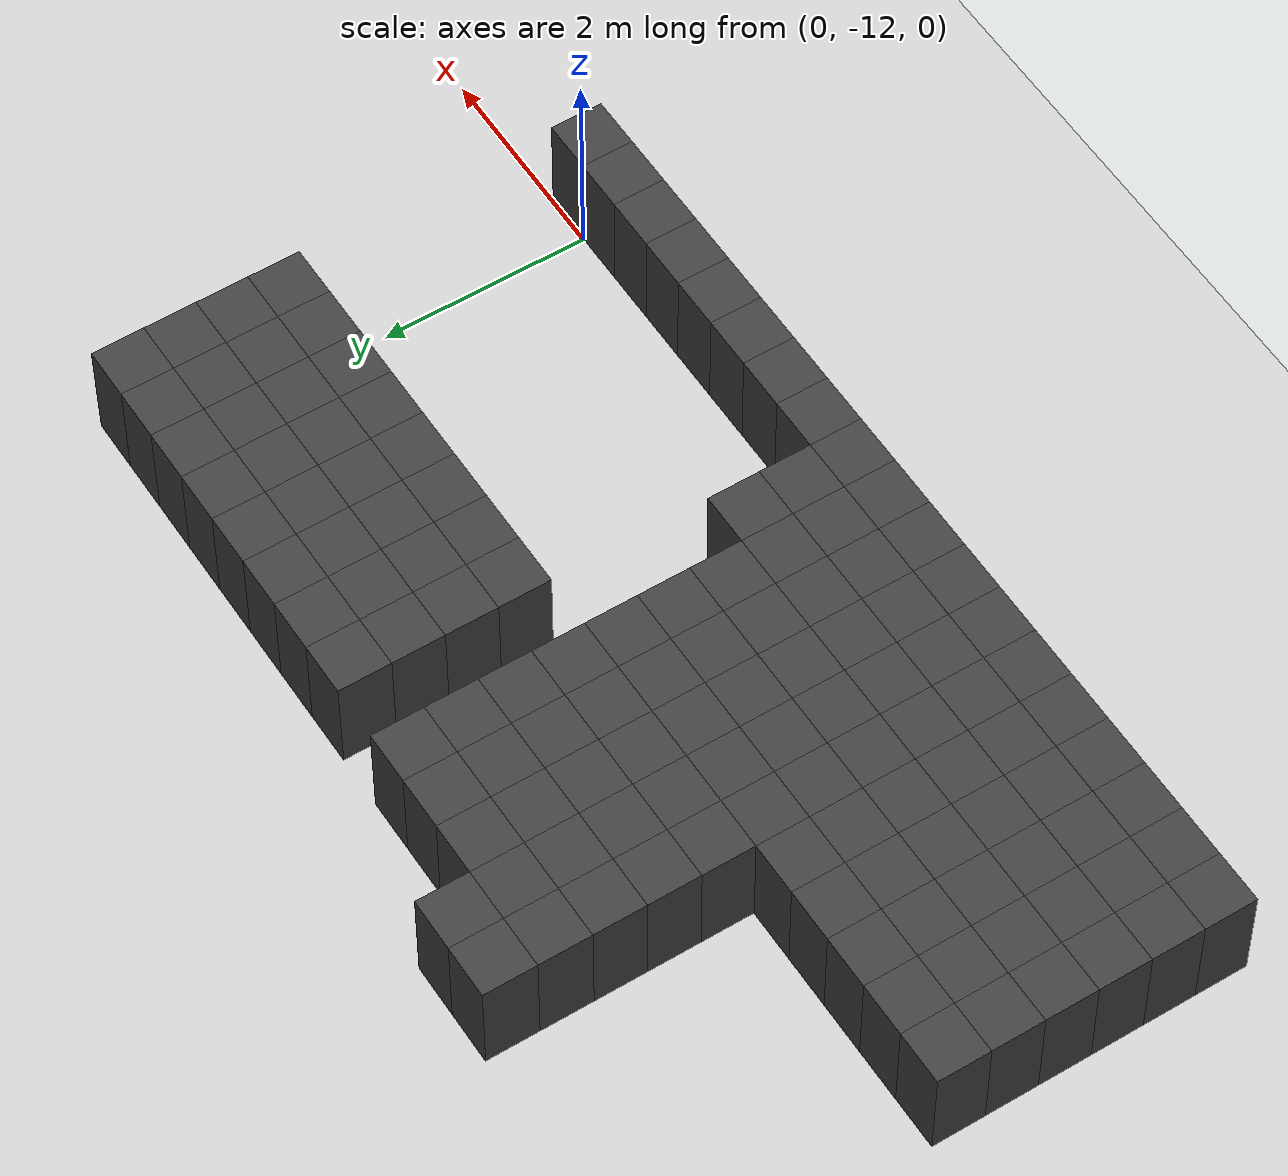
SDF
<sdf version="1.7">
 <world name="map_14495">
  <model name="ground_plane">
   <static>true</static>
   <link name="link">
    <collision name="collision">
     <geometry><plane><normal>0 0 1</normal><size>200 200</size></plane></geometry>
    </collision>
    <visual name="visual">
     <geometry><plane><normal>0 0 1</normal><size>200 200</size></plane></geometry>
     <material><ambient>0.8 0.8 0.8 1</ambient><diffuse>0.8 0.8 0.8 1</diffuse></material>
    </visual>
   </link>
  </model>
  <model name="maze_environment">
   <static>true</static>
   <link name="wall_1392">
    <pose>-6.250 -7.250 0.500 0 0 0</pose>
    <collision name="col"><geometry><box><size>0.5 0.5 1.0</size></box></geometry></collision>
    <visual name="vis">
     <geometry><box><size>0.5 0.5 1.0</size></box></geometry>
     <material><ambient>0.15 0.15 0.15 1</ambient><diffuse>0.25 0.25 0.25 1</diffuse></material>
    </visual>
   </link>
   <link name="wall_1393">
    <pose>-5.750 -7.250 0.500 0 0 0</pose>
    <collision name="col"><geometry><box><size>0.5 0.5 1.0</size></box></geometry></collision>
    <visual name="vis">
     <geometry><box><size>0.5 0.5 1.0</size></box></geometry>
     <material><ambient>0.15 0.15 0.15 1</ambient><diffuse>0.25 0.25 0.25 1</diffuse></material>
    </visual>
   </link>
   <link name="wall_1425">
    <pose>-6.250 -7.750 0.500 0 0 0</pose>
    <collision name="col"><geometry><box><size>0.5 0.5 1.0</size></box></geometry></collision>
    <visual name="vis">
     <geometry><box><size>0.5 0.5 1.0</size></box></geometry>
     <material><ambient>0.15 0.15 0.15 1</ambient><diffuse>0.25 0.25 0.25 1</diffuse></material>
    </visual>
   </link>
   <link name="wall_1426">
    <pose>-5.750 -7.750 0.500 0 0 0</pose>
    <collision name="col"><geometry><box><size>0.5 0.5 1.0</size></box></geometry></collision>
    <visual name="vis">
     <geometry><box><size>0.5 0.5 1.0</size></box></geometry>
     <material><ambient>0.15 0.15 0.15 1</ambient><diffuse>0.25 0.25 0.25 1</diffuse></material>
    </visual>
   </link>
   <link name="wall_1427">
    <pose>-5.250 -7.750 0.500 0 0 0</pose>
    <collision name="col"><geometry><box><size>0.5 0.5 1.0</size></box></geometry></collision>
    <visual name="vis">
     <geometry><box><size>0.5 0.5 1.0</size></box></geometry>
     <material><ambient>0.15 0.15 0.15 1</ambient><diffuse>0.25 0.25 0.25 1</diffuse></material>
    </visual>
   </link>
   <link name="wall_1428">
    <pose>-4.750 -7.750 0.500 0 0 0</pose>
    <collision name="col"><geometry><box><size>0.5 0.5 1.0</size></box></geometry></collision>
    <visual name="vis">
     <geometry><box><size>0.5 0.5 1.0</size></box></geometry>
     <material><ambient>0.15 0.15 0.15 1</ambient><diffuse>0.25 0.25 0.25 1</diffuse></material>
    </visual>
   </link>
   <link name="wall_1429">
    <pose>-4.250 -7.750 0.500 0 0 0</pose>
    <collision name="col"><geometry><box><size>0.5 0.5 1.0</size></box></geometry></collision>
    <visual name="vis">
     <geometry><box><size>0.5 0.5 1.0</size></box></geometry>
     <material><ambient>0.15 0.15 0.15 1</ambient><diffuse>0.25 0.25 0.25 1</diffuse></material>
    </visual>
   </link>
   <link name="wall_1430">
    <pose>-3.250 -7.750 0.500 0 0 0</pose>
    <collision name="col"><geometry><box><size>0.5 0.5 1.0</size></box></geometry></collision>
    <visual name="vis">
     <geometry><box><size>0.5 0.5 1.0</size></box></geometry>
     <material><ambient>0.15 0.15 0.15 1</ambient><diffuse>0.25 0.25 0.25 1</diffuse></material>
    </visual>
   </link>
   <link name="wall_1431">
    <pose>-2.750 -7.750 0.500 0 0 0</pose>
    <collision name="col"><geometry><box><size>0.5 0.5 1.0</size></box></geometry></collision>
    <visual name="vis">
     <geometry><box><size>0.5 0.5 1.0</size></box></geometry>
     <material><ambient>0.15 0.15 0.15 1</ambient><diffuse>0.25 0.25 0.25 1</diffuse></material>
    </visual>
   </link>
   <link name="wall_1432">
    <pose>-2.250 -7.750 0.500 0 0 0</pose>
    <collision name="col"><geometry><box><size>0.5 0.5 1.0</size></box></geometry></collision>
    <visual name="vis">
     <geometry><box><size>0.5 0.5 1.0</size></box></geometry>
     <material><ambient>0.15 0.15 0.15 1</ambient><diffuse>0.25 0.25 0.25 1</diffuse></material>
    </visual>
   </link>
   <link name="wall_1433">
    <pose>-1.750 -7.750 0.500 0 0 0</pose>
    <collision name="col"><geometry><box><size>0.5 0.5 1.0</size></box></geometry></collision>
    <visual name="vis">
     <geometry><box><size>0.5 0.5 1.0</size></box></geometry>
     <material><ambient>0.15 0.15 0.15 1</ambient><diffuse>0.25 0.25 0.25 1</diffuse></material>
    </visual>
   </link>
   <link name="wall_1434">
    <pose>-1.250 -7.750 0.500 0 0 0</pose>
    <collision name="col"><geometry><box><size>0.5 0.5 1.0</size></box></geometry></collision>
    <visual name="vis">
     <geometry><box><size>0.5 0.5 1.0</size></box></geometry>
     <material><ambient>0.15 0.15 0.15 1</ambient><diffuse>0.25 0.25 0.25 1</diffuse></material>
    </visual>
   </link>
   <link name="wall_1435">
    <pose>-0.750 -7.750 0.500 0 0 0</pose>
    <collision name="col"><geometry><box><size>0.5 0.5 1.0</size></box></geometry></collision>
    <visual name="vis">
     <geometry><box><size>0.5 0.5 1.0</size></box></geometry>
     <material><ambient>0.15 0.15 0.15 1</ambient><diffuse>0.25 0.25 0.25 1</diffuse></material>
    </visual>
   </link>
   <link name="wall_1436">
    <pose>-0.250 -7.750 0.500 0 0 0</pose>
    <collision name="col"><geometry><box><size>0.5 0.5 1.0</size></box></geometry></collision>
    <visual name="vis">
     <geometry><box><size>0.5 0.5 1.0</size></box></geometry>
     <material><ambient>0.15 0.15 0.15 1</ambient><diffuse>0.25 0.25 0.25 1</diffuse></material>
    </visual>
   </link>
   <link name="wall_1437">
    <pose>0.250 -7.750 0.500 0 0 0</pose>
    <collision name="col"><geometry><box><size>0.5 0.5 1.0</size></box></geometry></collision>
    <visual name="vis">
     <geometry><box><size>0.5 0.5 1.0</size></box></geometry>
     <material><ambient>0.15 0.15 0.15 1</ambient><diffuse>0.25 0.25 0.25 1</diffuse></material>
    </visual>
   </link>
   <link name="wall_1458">
    <pose>-6.250 -8.250 0.500 0 0 0</pose>
    <collision name="col"><geometry><box><size>0.5 0.5 1.0</size></box></geometry></collision>
    <visual name="vis">
     <geometry><box><size>0.5 0.5 1.0</size></box></geometry>
     <material><ambient>0.15 0.15 0.15 1</ambient><diffuse>0.25 0.25 0.25 1</diffuse></material>
    </visual>
   </link>
   <link name="wall_1459">
    <pose>-5.750 -8.250 0.500 0 0 0</pose>
    <collision name="col"><geometry><box><size>0.5 0.5 1.0</size></box></geometry></collision>
    <visual name="vis">
     <geometry><box><size>0.5 0.5 1.0</size></box></geometry>
     <material><ambient>0.15 0.15 0.15 1</ambient><diffuse>0.25 0.25 0.25 1</diffuse></material>
    </visual>
   </link>
   <link name="wall_1460">
    <pose>-5.250 -8.250 0.500 0 0 0</pose>
    <collision name="col"><geometry><box><size>0.5 0.5 1.0</size></box></geometry></collision>
    <visual name="vis">
     <geometry><box><size>0.5 0.5 1.0</size></box></geometry>
     <material><ambient>0.15 0.15 0.15 1</ambient><diffuse>0.25 0.25 0.25 1</diffuse></material>
    </visual>
   </link>
   <link name="wall_1461">
    <pose>-4.750 -8.250 0.500 0 0 0</pose>
    <collision name="col"><geometry><box><size>0.5 0.5 1.0</size></box></geometry></collision>
    <visual name="vis">
     <geometry><box><size>0.5 0.5 1.0</size></box></geometry>
     <material><ambient>0.15 0.15 0.15 1</ambient><diffuse>0.25 0.25 0.25 1</diffuse></material>
    </visual>
   </link>
   <link name="wall_1462">
    <pose>-4.250 -8.250 0.500 0 0 0</pose>
    <collision name="col"><geometry><box><size>0.5 0.5 1.0</size></box></geometry></collision>
    <visual name="vis">
     <geometry><box><size>0.5 0.5 1.0</size></box></geometry>
     <material><ambient>0.15 0.15 0.15 1</ambient><diffuse>0.25 0.25 0.25 1</diffuse></material>
    </visual>
   </link>
   <link name="wall_1463">
    <pose>-3.250 -8.250 0.500 0 0 0</pose>
    <collision name="col"><geometry><box><size>0.5 0.5 1.0</size></box></geometry></collision>
    <visual name="vis">
     <geometry><box><size>0.5 0.5 1.0</size></box></geometry>
     <material><ambient>0.15 0.15 0.15 1</ambient><diffuse>0.25 0.25 0.25 1</diffuse></material>
    </visual>
   </link>
   <link name="wall_1464">
    <pose>-2.750 -8.250 0.500 0 0 0</pose>
    <collision name="col"><geometry><box><size>0.5 0.5 1.0</size></box></geometry></collision>
    <visual name="vis">
     <geometry><box><size>0.5 0.5 1.0</size></box></geometry>
     <material><ambient>0.15 0.15 0.15 1</ambient><diffuse>0.25 0.25 0.25 1</diffuse></material>
    </visual>
   </link>
   <link name="wall_1465">
    <pose>-2.250 -8.250 0.500 0 0 0</pose>
    <collision name="col"><geometry><box><size>0.5 0.5 1.0</size></box></geometry></collision>
    <visual name="vis">
     <geometry><box><size>0.5 0.5 1.0</size></box></geometry>
     <material><ambient>0.15 0.15 0.15 1</ambient><diffuse>0.25 0.25 0.25 1</diffuse></material>
    </visual>
   </link>
   <link name="wall_1466">
    <pose>-1.750 -8.250 0.500 0 0 0</pose>
    <collision name="col"><geometry><box><size>0.5 0.5 1.0</size></box></geometry></collision>
    <visual name="vis">
     <geometry><box><size>0.5 0.5 1.0</size></box></geometry>
     <material><ambient>0.15 0.15 0.15 1</ambient><diffuse>0.25 0.25 0.25 1</diffuse></material>
    </visual>
   </link>
   <link name="wall_1467">
    <pose>-1.250 -8.250 0.500 0 0 0</pose>
    <collision name="col"><geometry><box><size>0.5 0.5 1.0</size></box></geometry></collision>
    <visual name="vis">
     <geometry><box><size>0.5 0.5 1.0</size></box></geometry>
     <material><ambient>0.15 0.15 0.15 1</ambient><diffuse>0.25 0.25 0.25 1</diffuse></material>
    </visual>
   </link>
   <link name="wall_1468">
    <pose>-0.750 -8.250 0.500 0 0 0</pose>
    <collision name="col"><geometry><box><size>0.5 0.5 1.0</size></box></geometry></collision>
    <visual name="vis">
     <geometry><box><size>0.5 0.5 1.0</size></box></geometry>
     <material><ambient>0.15 0.15 0.15 1</ambient><diffuse>0.25 0.25 0.25 1</diffuse></material>
    </visual>
   </link>
   <link name="wall_1469">
    <pose>-0.250 -8.250 0.500 0 0 0</pose>
    <collision name="col"><geometry><box><size>0.5 0.5 1.0</size></box></geometry></collision>
    <visual name="vis">
     <geometry><box><size>0.5 0.5 1.0</size></box></geometry>
     <material><ambient>0.15 0.15 0.15 1</ambient><diffuse>0.25 0.25 0.25 1</diffuse></material>
    </visual>
   </link>
   <link name="wall_1470">
    <pose>0.250 -8.250 0.500 0 0 0</pose>
    <collision name="col"><geometry><box><size>0.5 0.5 1.0</size></box></geometry></collision>
    <visual name="vis">
     <geometry><box><size>0.5 0.5 1.0</size></box></geometry>
     <material><ambient>0.15 0.15 0.15 1</ambient><diffuse>0.25 0.25 0.25 1</diffuse></material>
    </visual>
   </link>
   <link name="wall_1489">
    <pose>-6.250 -8.750 0.500 0 0 0</pose>
    <collision name="col"><geometry><box><size>0.5 0.5 1.0</size></box></geometry></collision>
    <visual name="vis">
     <geometry><box><size>0.5 0.5 1.0</size></box></geometry>
     <material><ambient>0.15 0.15 0.15 1</ambient><diffuse>0.25 0.25 0.25 1</diffuse></material>
    </visual>
   </link>
   <link name="wall_1490">
    <pose>-5.750 -8.750 0.500 0 0 0</pose>
    <collision name="col"><geometry><box><size>0.5 0.5 1.0</size></box></geometry></collision>
    <visual name="vis">
     <geometry><box><size>0.5 0.5 1.0</size></box></geometry>
     <material><ambient>0.15 0.15 0.15 1</ambient><diffuse>0.25 0.25 0.25 1</diffuse></material>
    </visual>
   </link>
   <link name="wall_1491">
    <pose>-5.250 -8.750 0.500 0 0 0</pose>
    <collision name="col"><geometry><box><size>0.5 0.5 1.0</size></box></geometry></collision>
    <visual name="vis">
     <geometry><box><size>0.5 0.5 1.0</size></box></geometry>
     <material><ambient>0.15 0.15 0.15 1</ambient><diffuse>0.25 0.25 0.25 1</diffuse></material>
    </visual>
   </link>
   <link name="wall_1492">
    <pose>-4.750 -8.750 0.500 0 0 0</pose>
    <collision name="col"><geometry><box><size>0.5 0.5 1.0</size></box></geometry></collision>
    <visual name="vis">
     <geometry><box><size>0.5 0.5 1.0</size></box></geometry>
     <material><ambient>0.15 0.15 0.15 1</ambient><diffuse>0.25 0.25 0.25 1</diffuse></material>
    </visual>
   </link>
   <link name="wall_1493">
    <pose>-4.250 -8.750 0.500 0 0 0</pose>
    <collision name="col"><geometry><box><size>0.5 0.5 1.0</size></box></geometry></collision>
    <visual name="vis">
     <geometry><box><size>0.5 0.5 1.0</size></box></geometry>
     <material><ambient>0.15 0.15 0.15 1</ambient><diffuse>0.25 0.25 0.25 1</diffuse></material>
    </visual>
   </link>
   <link name="wall_1494">
    <pose>-3.250 -8.750 0.500 0 0 0</pose>
    <collision name="col"><geometry><box><size>0.5 0.5 1.0</size></box></geometry></collision>
    <visual name="vis">
     <geometry><box><size>0.5 0.5 1.0</size></box></geometry>
     <material><ambient>0.15 0.15 0.15 1</ambient><diffuse>0.25 0.25 0.25 1</diffuse></material>
    </visual>
   </link>
   <link name="wall_1495">
    <pose>-2.750 -8.750 0.500 0 0 0</pose>
    <collision name="col"><geometry><box><size>0.5 0.5 1.0</size></box></geometry></collision>
    <visual name="vis">
     <geometry><box><size>0.5 0.5 1.0</size></box></geometry>
     <material><ambient>0.15 0.15 0.15 1</ambient><diffuse>0.25 0.25 0.25 1</diffuse></material>
    </visual>
   </link>
   <link name="wall_1496">
    <pose>-2.250 -8.750 0.500 0 0 0</pose>
    <collision name="col"><geometry><box><size>0.5 0.5 1.0</size></box></geometry></collision>
    <visual name="vis">
     <geometry><box><size>0.5 0.5 1.0</size></box></geometry>
     <material><ambient>0.15 0.15 0.15 1</ambient><diffuse>0.25 0.25 0.25 1</diffuse></material>
    </visual>
   </link>
   <link name="wall_1497">
    <pose>-1.750 -8.750 0.500 0 0 0</pose>
    <collision name="col"><geometry><box><size>0.5 0.5 1.0</size></box></geometry></collision>
    <visual name="vis">
     <geometry><box><size>0.5 0.5 1.0</size></box></geometry>
     <material><ambient>0.15 0.15 0.15 1</ambient><diffuse>0.25 0.25 0.25 1</diffuse></material>
    </visual>
   </link>
   <link name="wall_1498">
    <pose>-1.250 -8.750 0.500 0 0 0</pose>
    <collision name="col"><geometry><box><size>0.5 0.5 1.0</size></box></geometry></collision>
    <visual name="vis">
     <geometry><box><size>0.5 0.5 1.0</size></box></geometry>
     <material><ambient>0.15 0.15 0.15 1</ambient><diffuse>0.25 0.25 0.25 1</diffuse></material>
    </visual>
   </link>
   <link name="wall_1499">
    <pose>-0.750 -8.750 0.500 0 0 0</pose>
    <collision name="col"><geometry><box><size>0.5 0.5 1.0</size></box></geometry></collision>
    <visual name="vis">
     <geometry><box><size>0.5 0.5 1.0</size></box></geometry>
     <material><ambient>0.15 0.15 0.15 1</ambient><diffuse>0.25 0.25 0.25 1</diffuse></material>
    </visual>
   </link>
   <link name="wall_1500">
    <pose>-0.250 -8.750 0.500 0 0 0</pose>
    <collision name="col"><geometry><box><size>0.5 0.5 1.0</size></box></geometry></collision>
    <visual name="vis">
     <geometry><box><size>0.5 0.5 1.0</size></box></geometry>
     <material><ambient>0.15 0.15 0.15 1</ambient><diffuse>0.25 0.25 0.25 1</diffuse></material>
    </visual>
   </link>
   <link name="wall_1501">
    <pose>0.250 -8.750 0.500 0 0 0</pose>
    <collision name="col"><geometry><box><size>0.5 0.5 1.0</size></box></geometry></collision>
    <visual name="vis">
     <geometry><box><size>0.5 0.5 1.0</size></box></geometry>
     <material><ambient>0.15 0.15 0.15 1</ambient><diffuse>0.25 0.25 0.25 1</diffuse></material>
    </visual>
   </link>
   <link name="wall_1520">
    <pose>-6.250 -9.250 0.500 0 0 0</pose>
    <collision name="col"><geometry><box><size>0.5 0.5 1.0</size></box></geometry></collision>
    <visual name="vis">
     <geometry><box><size>0.5 0.5 1.0</size></box></geometry>
     <material><ambient>0.15 0.15 0.15 1</ambient><diffuse>0.25 0.25 0.25 1</diffuse></material>
    </visual>
   </link>
   <link name="wall_1521">
    <pose>-5.750 -9.250 0.500 0 0 0</pose>
    <collision name="col"><geometry><box><size>0.5 0.5 1.0</size></box></geometry></collision>
    <visual name="vis">
     <geometry><box><size>0.5 0.5 1.0</size></box></geometry>
     <material><ambient>0.15 0.15 0.15 1</ambient><diffuse>0.25 0.25 0.25 1</diffuse></material>
    </visual>
   </link>
   <link name="wall_1522">
    <pose>-5.250 -9.250 0.500 0 0 0</pose>
    <collision name="col"><geometry><box><size>0.5 0.5 1.0</size></box></geometry></collision>
    <visual name="vis">
     <geometry><box><size>0.5 0.5 1.0</size></box></geometry>
     <material><ambient>0.15 0.15 0.15 1</ambient><diffuse>0.25 0.25 0.25 1</diffuse></material>
    </visual>
   </link>
   <link name="wall_1523">
    <pose>-4.750 -9.250 0.500 0 0 0</pose>
    <collision name="col"><geometry><box><size>0.5 0.5 1.0</size></box></geometry></collision>
    <visual name="vis">
     <geometry><box><size>0.5 0.5 1.0</size></box></geometry>
     <material><ambient>0.15 0.15 0.15 1</ambient><diffuse>0.25 0.25 0.25 1</diffuse></material>
    </visual>
   </link>
   <link name="wall_1524">
    <pose>-4.250 -9.250 0.500 0 0 0</pose>
    <collision name="col"><geometry><box><size>0.5 0.5 1.0</size></box></geometry></collision>
    <visual name="vis">
     <geometry><box><size>0.5 0.5 1.0</size></box></geometry>
     <material><ambient>0.15 0.15 0.15 1</ambient><diffuse>0.25 0.25 0.25 1</diffuse></material>
    </visual>
   </link>
   <link name="wall_1525">
    <pose>-3.250 -9.250 0.500 0 0 0</pose>
    <collision name="col"><geometry><box><size>0.5 0.5 1.0</size></box></geometry></collision>
    <visual name="vis">
     <geometry><box><size>0.5 0.5 1.0</size></box></geometry>
     <material><ambient>0.15 0.15 0.15 1</ambient><diffuse>0.25 0.25 0.25 1</diffuse></material>
    </visual>
   </link>
   <link name="wall_1526">
    <pose>-2.750 -9.250 0.500 0 0 0</pose>
    <collision name="col"><geometry><box><size>0.5 0.5 1.0</size></box></geometry></collision>
    <visual name="vis">
     <geometry><box><size>0.5 0.5 1.0</size></box></geometry>
     <material><ambient>0.15 0.15 0.15 1</ambient><diffuse>0.25 0.25 0.25 1</diffuse></material>
    </visual>
   </link>
   <link name="wall_1527">
    <pose>-2.250 -9.250 0.500 0 0 0</pose>
    <collision name="col"><geometry><box><size>0.5 0.5 1.0</size></box></geometry></collision>
    <visual name="vis">
     <geometry><box><size>0.5 0.5 1.0</size></box></geometry>
     <material><ambient>0.15 0.15 0.15 1</ambient><diffuse>0.25 0.25 0.25 1</diffuse></material>
    </visual>
   </link>
   <link name="wall_1528">
    <pose>-1.750 -9.250 0.500 0 0 0</pose>
    <collision name="col"><geometry><box><size>0.5 0.5 1.0</size></box></geometry></collision>
    <visual name="vis">
     <geometry><box><size>0.5 0.5 1.0</size></box></geometry>
     <material><ambient>0.15 0.15 0.15 1</ambient><diffuse>0.25 0.25 0.25 1</diffuse></material>
    </visual>
   </link>
   <link name="wall_1529">
    <pose>-1.250 -9.250 0.500 0 0 0</pose>
    <collision name="col"><geometry><box><size>0.5 0.5 1.0</size></box></geometry></collision>
    <visual name="vis">
     <geometry><box><size>0.5 0.5 1.0</size></box></geometry>
     <material><ambient>0.15 0.15 0.15 1</ambient><diffuse>0.25 0.25 0.25 1</diffuse></material>
    </visual>
   </link>
   <link name="wall_1530">
    <pose>-0.750 -9.250 0.500 0 0 0</pose>
    <collision name="col"><geometry><box><size>0.5 0.5 1.0</size></box></geometry></collision>
    <visual name="vis">
     <geometry><box><size>0.5 0.5 1.0</size></box></geometry>
     <material><ambient>0.15 0.15 0.15 1</ambient><diffuse>0.25 0.25 0.25 1</diffuse></material>
    </visual>
   </link>
   <link name="wall_1531">
    <pose>-0.250 -9.250 0.500 0 0 0</pose>
    <collision name="col"><geometry><box><size>0.5 0.5 1.0</size></box></geometry></collision>
    <visual name="vis">
     <geometry><box><size>0.5 0.5 1.0</size></box></geometry>
     <material><ambient>0.15 0.15 0.15 1</ambient><diffuse>0.25 0.25 0.25 1</diffuse></material>
    </visual>
   </link>
   <link name="wall_1532">
    <pose>0.250 -9.250 0.500 0 0 0</pose>
    <collision name="col"><geometry><box><size>0.5 0.5 1.0</size></box></geometry></collision>
    <visual name="vis">
     <geometry><box><size>0.5 0.5 1.0</size></box></geometry>
     <material><ambient>0.15 0.15 0.15 1</ambient><diffuse>0.25 0.25 0.25 1</diffuse></material>
    </visual>
   </link>
   <link name="wall_1553">
    <pose>-8.750 -9.750 0.500 0 0 0</pose>
    <collision name="col"><geometry><box><size>0.5 0.5 1.0</size></box></geometry></collision>
    <visual name="vis">
     <geometry><box><size>0.5 0.5 1.0</size></box></geometry>
     <material><ambient>0.15 0.15 0.15 1</ambient><diffuse>0.25 0.25 0.25 1</diffuse></material>
    </visual>
   </link>
   <link name="wall_1554">
    <pose>-8.250 -9.750 0.500 0 0 0</pose>
    <collision name="col"><geometry><box><size>0.5 0.5 1.0</size></box></geometry></collision>
    <visual name="vis">
     <geometry><box><size>0.5 0.5 1.0</size></box></geometry>
     <material><ambient>0.15 0.15 0.15 1</ambient><diffuse>0.25 0.25 0.25 1</diffuse></material>
    </visual>
   </link>
   <link name="wall_1555">
    <pose>-7.750 -9.750 0.500 0 0 0</pose>
    <collision name="col"><geometry><box><size>0.5 0.5 1.0</size></box></geometry></collision>
    <visual name="vis">
     <geometry><box><size>0.5 0.5 1.0</size></box></geometry>
     <material><ambient>0.15 0.15 0.15 1</ambient><diffuse>0.25 0.25 0.25 1</diffuse></material>
    </visual>
   </link>
   <link name="wall_1556">
    <pose>-7.250 -9.750 0.500 0 0 0</pose>
    <collision name="col"><geometry><box><size>0.5 0.5 1.0</size></box></geometry></collision>
    <visual name="vis">
     <geometry><box><size>0.5 0.5 1.0</size></box></geometry>
     <material><ambient>0.15 0.15 0.15 1</ambient><diffuse>0.25 0.25 0.25 1</diffuse></material>
    </visual>
   </link>
   <link name="wall_1557">
    <pose>-6.750 -9.750 0.500 0 0 0</pose>
    <collision name="col"><geometry><box><size>0.5 0.5 1.0</size></box></geometry></collision>
    <visual name="vis">
     <geometry><box><size>0.5 0.5 1.0</size></box></geometry>
     <material><ambient>0.15 0.15 0.15 1</ambient><diffuse>0.25 0.25 0.25 1</diffuse></material>
    </visual>
   </link>
   <link name="wall_1558">
    <pose>-6.250 -9.750 0.500 0 0 0</pose>
    <collision name="col"><geometry><box><size>0.5 0.5 1.0</size></box></geometry></collision>
    <visual name="vis">
     <geometry><box><size>0.5 0.5 1.0</size></box></geometry>
     <material><ambient>0.15 0.15 0.15 1</ambient><diffuse>0.25 0.25 0.25 1</diffuse></material>
    </visual>
   </link>
   <link name="wall_1559">
    <pose>-5.750 -9.750 0.500 0 0 0</pose>
    <collision name="col"><geometry><box><size>0.5 0.5 1.0</size></box></geometry></collision>
    <visual name="vis">
     <geometry><box><size>0.5 0.5 1.0</size></box></geometry>
     <material><ambient>0.15 0.15 0.15 1</ambient><diffuse>0.25 0.25 0.25 1</diffuse></material>
    </visual>
   </link>
   <link name="wall_1560">
    <pose>-5.250 -9.750 0.500 0 0 0</pose>
    <collision name="col"><geometry><box><size>0.5 0.5 1.0</size></box></geometry></collision>
    <visual name="vis">
     <geometry><box><size>0.5 0.5 1.0</size></box></geometry>
     <material><ambient>0.15 0.15 0.15 1</ambient><diffuse>0.25 0.25 0.25 1</diffuse></material>
    </visual>
   </link>
   <link name="wall_1561">
    <pose>-4.750 -9.750 0.500 0 0 0</pose>
    <collision name="col"><geometry><box><size>0.5 0.5 1.0</size></box></geometry></collision>
    <visual name="vis">
     <geometry><box><size>0.5 0.5 1.0</size></box></geometry>
     <material><ambient>0.15 0.15 0.15 1</ambient><diffuse>0.25 0.25 0.25 1</diffuse></material>
    </visual>
   </link>
   <link name="wall_1562">
    <pose>-4.250 -9.750 0.500 0 0 0</pose>
    <collision name="col"><geometry><box><size>0.5 0.5 1.0</size></box></geometry></collision>
    <visual name="vis">
     <geometry><box><size>0.5 0.5 1.0</size></box></geometry>
     <material><ambient>0.15 0.15 0.15 1</ambient><diffuse>0.25 0.25 0.25 1</diffuse></material>
    </visual>
   </link>
   <link name="wall_1583">
    <pose>-8.750 -10.250 0.500 0 0 0</pose>
    <collision name="col"><geometry><box><size>0.5 0.5 1.0</size></box></geometry></collision>
    <visual name="vis">
     <geometry><box><size>0.5 0.5 1.0</size></box></geometry>
     <material><ambient>0.15 0.15 0.15 1</ambient><diffuse>0.25 0.25 0.25 1</diffuse></material>
    </visual>
   </link>
   <link name="wall_1584">
    <pose>-8.250 -10.250 0.500 0 0 0</pose>
    <collision name="col"><geometry><box><size>0.5 0.5 1.0</size></box></geometry></collision>
    <visual name="vis">
     <geometry><box><size>0.5 0.5 1.0</size></box></geometry>
     <material><ambient>0.15 0.15 0.15 1</ambient><diffuse>0.25 0.25 0.25 1</diffuse></material>
    </visual>
   </link>
   <link name="wall_1585">
    <pose>-7.750 -10.250 0.500 0 0 0</pose>
    <collision name="col"><geometry><box><size>0.5 0.5 1.0</size></box></geometry></collision>
    <visual name="vis">
     <geometry><box><size>0.5 0.5 1.0</size></box></geometry>
     <material><ambient>0.15 0.15 0.15 1</ambient><diffuse>0.25 0.25 0.25 1</diffuse></material>
    </visual>
   </link>
   <link name="wall_1586">
    <pose>-7.250 -10.250 0.500 0 0 0</pose>
    <collision name="col"><geometry><box><size>0.5 0.5 1.0</size></box></geometry></collision>
    <visual name="vis">
     <geometry><box><size>0.5 0.5 1.0</size></box></geometry>
     <material><ambient>0.15 0.15 0.15 1</ambient><diffuse>0.25 0.25 0.25 1</diffuse></material>
    </visual>
   </link>
   <link name="wall_1587">
    <pose>-6.750 -10.250 0.500 0 0 0</pose>
    <collision name="col"><geometry><box><size>0.5 0.5 1.0</size></box></geometry></collision>
    <visual name="vis">
     <geometry><box><size>0.5 0.5 1.0</size></box></geometry>
     <material><ambient>0.15 0.15 0.15 1</ambient><diffuse>0.25 0.25 0.25 1</diffuse></material>
    </visual>
   </link>
   <link name="wall_1588">
    <pose>-6.250 -10.250 0.500 0 0 0</pose>
    <collision name="col"><geometry><box><size>0.5 0.5 1.0</size></box></geometry></collision>
    <visual name="vis">
     <geometry><box><size>0.5 0.5 1.0</size></box></geometry>
     <material><ambient>0.15 0.15 0.15 1</ambient><diffuse>0.25 0.25 0.25 1</diffuse></material>
    </visual>
   </link>
   <link name="wall_1589">
    <pose>-5.750 -10.250 0.500 0 0 0</pose>
    <collision name="col"><geometry><box><size>0.5 0.5 1.0</size></box></geometry></collision>
    <visual name="vis">
     <geometry><box><size>0.5 0.5 1.0</size></box></geometry>
     <material><ambient>0.15 0.15 0.15 1</ambient><diffuse>0.25 0.25 0.25 1</diffuse></material>
    </visual>
   </link>
   <link name="wall_1590">
    <pose>-5.250 -10.250 0.500 0 0 0</pose>
    <collision name="col"><geometry><box><size>0.5 0.5 1.0</size></box></geometry></collision>
    <visual name="vis">
     <geometry><box><size>0.5 0.5 1.0</size></box></geometry>
     <material><ambient>0.15 0.15 0.15 1</ambient><diffuse>0.25 0.25 0.25 1</diffuse></material>
    </visual>
   </link>
   <link name="wall_1591">
    <pose>-4.750 -10.250 0.500 0 0 0</pose>
    <collision name="col"><geometry><box><size>0.5 0.5 1.0</size></box></geometry></collision>
    <visual name="vis">
     <geometry><box><size>0.5 0.5 1.0</size></box></geometry>
     <material><ambient>0.15 0.15 0.15 1</ambient><diffuse>0.25 0.25 0.25 1</diffuse></material>
    </visual>
   </link>
   <link name="wall_1592">
    <pose>-4.250 -10.250 0.500 0 0 0</pose>
    <collision name="col"><geometry><box><size>0.5 0.5 1.0</size></box></geometry></collision>
    <visual name="vis">
     <geometry><box><size>0.5 0.5 1.0</size></box></geometry>
     <material><ambient>0.15 0.15 0.15 1</ambient><diffuse>0.25 0.25 0.25 1</diffuse></material>
    </visual>
   </link>
   <link name="wall_1616">
    <pose>-8.750 -10.750 0.500 0 0 0</pose>
    <collision name="col"><geometry><box><size>0.5 0.5 1.0</size></box></geometry></collision>
    <visual name="vis">
     <geometry><box><size>0.5 0.5 1.0</size></box></geometry>
     <material><ambient>0.15 0.15 0.15 1</ambient><diffuse>0.25 0.25 0.25 1</diffuse></material>
    </visual>
   </link>
   <link name="wall_1617">
    <pose>-8.250 -10.750 0.500 0 0 0</pose>
    <collision name="col"><geometry><box><size>0.5 0.5 1.0</size></box></geometry></collision>
    <visual name="vis">
     <geometry><box><size>0.5 0.5 1.0</size></box></geometry>
     <material><ambient>0.15 0.15 0.15 1</ambient><diffuse>0.25 0.25 0.25 1</diffuse></material>
    </visual>
   </link>
   <link name="wall_1618">
    <pose>-7.750 -10.750 0.500 0 0 0</pose>
    <collision name="col"><geometry><box><size>0.5 0.5 1.0</size></box></geometry></collision>
    <visual name="vis">
     <geometry><box><size>0.5 0.5 1.0</size></box></geometry>
     <material><ambient>0.15 0.15 0.15 1</ambient><diffuse>0.25 0.25 0.25 1</diffuse></material>
    </visual>
   </link>
   <link name="wall_1619">
    <pose>-7.250 -10.750 0.500 0 0 0</pose>
    <collision name="col"><geometry><box><size>0.5 0.5 1.0</size></box></geometry></collision>
    <visual name="vis">
     <geometry><box><size>0.5 0.5 1.0</size></box></geometry>
     <material><ambient>0.15 0.15 0.15 1</ambient><diffuse>0.25 0.25 0.25 1</diffuse></material>
    </visual>
   </link>
   <link name="wall_1620">
    <pose>-6.750 -10.750 0.500 0 0 0</pose>
    <collision name="col"><geometry><box><size>0.5 0.5 1.0</size></box></geometry></collision>
    <visual name="vis">
     <geometry><box><size>0.5 0.5 1.0</size></box></geometry>
     <material><ambient>0.15 0.15 0.15 1</ambient><diffuse>0.25 0.25 0.25 1</diffuse></material>
    </visual>
   </link>
   <link name="wall_1621">
    <pose>-6.250 -10.750 0.500 0 0 0</pose>
    <collision name="col"><geometry><box><size>0.5 0.5 1.0</size></box></geometry></collision>
    <visual name="vis">
     <geometry><box><size>0.5 0.5 1.0</size></box></geometry>
     <material><ambient>0.15 0.15 0.15 1</ambient><diffuse>0.25 0.25 0.25 1</diffuse></material>
    </visual>
   </link>
   <link name="wall_1622">
    <pose>-5.750 -10.750 0.500 0 0 0</pose>
    <collision name="col"><geometry><box><size>0.5 0.5 1.0</size></box></geometry></collision>
    <visual name="vis">
     <geometry><box><size>0.5 0.5 1.0</size></box></geometry>
     <material><ambient>0.15 0.15 0.15 1</ambient><diffuse>0.25 0.25 0.25 1</diffuse></material>
    </visual>
   </link>
   <link name="wall_1623">
    <pose>-5.250 -10.750 0.500 0 0 0</pose>
    <collision name="col"><geometry><box><size>0.5 0.5 1.0</size></box></geometry></collision>
    <visual name="vis">
     <geometry><box><size>0.5 0.5 1.0</size></box></geometry>
     <material><ambient>0.15 0.15 0.15 1</ambient><diffuse>0.25 0.25 0.25 1</diffuse></material>
    </visual>
   </link>
   <link name="wall_1624">
    <pose>-4.750 -10.750 0.500 0 0 0</pose>
    <collision name="col"><geometry><box><size>0.5 0.5 1.0</size></box></geometry></collision>
    <visual name="vis">
     <geometry><box><size>0.5 0.5 1.0</size></box></geometry>
     <material><ambient>0.15 0.15 0.15 1</ambient><diffuse>0.25 0.25 0.25 1</diffuse></material>
    </visual>
   </link>
   <link name="wall_1625">
    <pose>-4.250 -10.750 0.500 0 0 0</pose>
    <collision name="col"><geometry><box><size>0.5 0.5 1.0</size></box></geometry></collision>
    <visual name="vis">
     <geometry><box><size>0.5 0.5 1.0</size></box></geometry>
     <material><ambient>0.15 0.15 0.15 1</ambient><diffuse>0.25 0.25 0.25 1</diffuse></material>
    </visual>
   </link>
   <link name="wall_1648">
    <pose>-8.750 -11.250 0.500 0 0 0</pose>
    <collision name="col"><geometry><box><size>0.5 0.5 1.0</size></box></geometry></collision>
    <visual name="vis">
     <geometry><box><size>0.5 0.5 1.0</size></box></geometry>
     <material><ambient>0.15 0.15 0.15 1</ambient><diffuse>0.25 0.25 0.25 1</diffuse></material>
    </visual>
   </link>
   <link name="wall_1649">
    <pose>-8.250 -11.250 0.500 0 0 0</pose>
    <collision name="col"><geometry><box><size>0.5 0.5 1.0</size></box></geometry></collision>
    <visual name="vis">
     <geometry><box><size>0.5 0.5 1.0</size></box></geometry>
     <material><ambient>0.15 0.15 0.15 1</ambient><diffuse>0.25 0.25 0.25 1</diffuse></material>
    </visual>
   </link>
   <link name="wall_1650">
    <pose>-7.750 -11.250 0.500 0 0 0</pose>
    <collision name="col"><geometry><box><size>0.5 0.5 1.0</size></box></geometry></collision>
    <visual name="vis">
     <geometry><box><size>0.5 0.5 1.0</size></box></geometry>
     <material><ambient>0.15 0.15 0.15 1</ambient><diffuse>0.25 0.25 0.25 1</diffuse></material>
    </visual>
   </link>
   <link name="wall_1651">
    <pose>-7.250 -11.250 0.500 0 0 0</pose>
    <collision name="col"><geometry><box><size>0.5 0.5 1.0</size></box></geometry></collision>
    <visual name="vis">
     <geometry><box><size>0.5 0.5 1.0</size></box></geometry>
     <material><ambient>0.15 0.15 0.15 1</ambient><diffuse>0.25 0.25 0.25 1</diffuse></material>
    </visual>
   </link>
   <link name="wall_1652">
    <pose>-6.750 -11.250 0.500 0 0 0</pose>
    <collision name="col"><geometry><box><size>0.5 0.5 1.0</size></box></geometry></collision>
    <visual name="vis">
     <geometry><box><size>0.5 0.5 1.0</size></box></geometry>
     <material><ambient>0.15 0.15 0.15 1</ambient><diffuse>0.25 0.25 0.25 1</diffuse></material>
    </visual>
   </link>
   <link name="wall_1653">
    <pose>-6.250 -11.250 0.500 0 0 0</pose>
    <collision name="col"><geometry><box><size>0.5 0.5 1.0</size></box></geometry></collision>
    <visual name="vis">
     <geometry><box><size>0.5 0.5 1.0</size></box></geometry>
     <material><ambient>0.15 0.15 0.15 1</ambient><diffuse>0.25 0.25 0.25 1</diffuse></material>
    </visual>
   </link>
   <link name="wall_1654">
    <pose>-5.750 -11.250 0.500 0 0 0</pose>
    <collision name="col"><geometry><box><size>0.5 0.5 1.0</size></box></geometry></collision>
    <visual name="vis">
     <geometry><box><size>0.5 0.5 1.0</size></box></geometry>
     <material><ambient>0.15 0.15 0.15 1</ambient><diffuse>0.25 0.25 0.25 1</diffuse></material>
    </visual>
   </link>
   <link name="wall_1655">
    <pose>-5.250 -11.250 0.500 0 0 0</pose>
    <collision name="col"><geometry><box><size>0.5 0.5 1.0</size></box></geometry></collision>
    <visual name="vis">
     <geometry><box><size>0.5 0.5 1.0</size></box></geometry>
     <material><ambient>0.15 0.15 0.15 1</ambient><diffuse>0.25 0.25 0.25 1</diffuse></material>
    </visual>
   </link>
   <link name="wall_1656">
    <pose>-4.750 -11.250 0.500 0 0 0</pose>
    <collision name="col"><geometry><box><size>0.5 0.5 1.0</size></box></geometry></collision>
    <visual name="vis">
     <geometry><box><size>0.5 0.5 1.0</size></box></geometry>
     <material><ambient>0.15 0.15 0.15 1</ambient><diffuse>0.25 0.25 0.25 1</diffuse></material>
    </visual>
   </link>
   <link name="wall_1657">
    <pose>-4.250 -11.250 0.500 0 0 0</pose>
    <collision name="col"><geometry><box><size>0.5 0.5 1.0</size></box></geometry></collision>
    <visual name="vis">
     <geometry><box><size>0.5 0.5 1.0</size></box></geometry>
     <material><ambient>0.15 0.15 0.15 1</ambient><diffuse>0.25 0.25 0.25 1</diffuse></material>
    </visual>
   </link>
   <link name="wall_1658">
    <pose>-3.750 -11.250 0.500 0 0 0</pose>
    <collision name="col"><geometry><box><size>0.5 0.5 1.0</size></box></geometry></collision>
    <visual name="vis">
     <geometry><box><size>0.5 0.5 1.0</size></box></geometry>
     <material><ambient>0.15 0.15 0.15 1</ambient><diffuse>0.25 0.25 0.25 1</diffuse></material>
    </visual>
   </link>
   <link name="wall_1678">
    <pose>-8.750 -11.750 0.500 0 0 0</pose>
    <collision name="col"><geometry><box><size>0.5 0.5 1.0</size></box></geometry></collision>
    <visual name="vis">
     <geometry><box><size>0.5 0.5 1.0</size></box></geometry>
     <material><ambient>0.15 0.15 0.15 1</ambient><diffuse>0.25 0.25 0.25 1</diffuse></material>
    </visual>
   </link>
   <link name="wall_1679">
    <pose>-8.250 -11.750 0.500 0 0 0</pose>
    <collision name="col"><geometry><box><size>0.5 0.5 1.0</size></box></geometry></collision>
    <visual name="vis">
     <geometry><box><size>0.5 0.5 1.0</size></box></geometry>
     <material><ambient>0.15 0.15 0.15 1</ambient><diffuse>0.25 0.25 0.25 1</diffuse></material>
    </visual>
   </link>
   <link name="wall_1680">
    <pose>-7.750 -11.750 0.500 0 0 0</pose>
    <collision name="col"><geometry><box><size>0.5 0.5 1.0</size></box></geometry></collision>
    <visual name="vis">
     <geometry><box><size>0.5 0.5 1.0</size></box></geometry>
     <material><ambient>0.15 0.15 0.15 1</ambient><diffuse>0.25 0.25 0.25 1</diffuse></material>
    </visual>
   </link>
   <link name="wall_1681">
    <pose>-7.250 -11.750 0.500 0 0 0</pose>
    <collision name="col"><geometry><box><size>0.5 0.5 1.0</size></box></geometry></collision>
    <visual name="vis">
     <geometry><box><size>0.5 0.5 1.0</size></box></geometry>
     <material><ambient>0.15 0.15 0.15 1</ambient><diffuse>0.25 0.25 0.25 1</diffuse></material>
    </visual>
   </link>
   <link name="wall_1682">
    <pose>-6.750 -11.750 0.500 0 0 0</pose>
    <collision name="col"><geometry><box><size>0.5 0.5 1.0</size></box></geometry></collision>
    <visual name="vis">
     <geometry><box><size>0.5 0.5 1.0</size></box></geometry>
     <material><ambient>0.15 0.15 0.15 1</ambient><diffuse>0.25 0.25 0.25 1</diffuse></material>
    </visual>
   </link>
   <link name="wall_1683">
    <pose>-6.250 -11.750 0.500 0 0 0</pose>
    <collision name="col"><geometry><box><size>0.5 0.5 1.0</size></box></geometry></collision>
    <visual name="vis">
     <geometry><box><size>0.5 0.5 1.0</size></box></geometry>
     <material><ambient>0.15 0.15 0.15 1</ambient><diffuse>0.25 0.25 0.25 1</diffuse></material>
    </visual>
   </link>
   <link name="wall_1684">
    <pose>-5.750 -11.750 0.500 0 0 0</pose>
    <collision name="col"><geometry><box><size>0.5 0.5 1.0</size></box></geometry></collision>
    <visual name="vis">
     <geometry><box><size>0.5 0.5 1.0</size></box></geometry>
     <material><ambient>0.15 0.15 0.15 1</ambient><diffuse>0.25 0.25 0.25 1</diffuse></material>
    </visual>
   </link>
   <link name="wall_1685">
    <pose>-5.250 -11.750 0.500 0 0 0</pose>
    <collision name="col"><geometry><box><size>0.5 0.5 1.0</size></box></geometry></collision>
    <visual name="vis">
     <geometry><box><size>0.5 0.5 1.0</size></box></geometry>
     <material><ambient>0.15 0.15 0.15 1</ambient><diffuse>0.25 0.25 0.25 1</diffuse></material>
    </visual>
   </link>
   <link name="wall_1686">
    <pose>-4.750 -11.750 0.500 0 0 0</pose>
    <collision name="col"><geometry><box><size>0.5 0.5 1.0</size></box></geometry></collision>
    <visual name="vis">
     <geometry><box><size>0.5 0.5 1.0</size></box></geometry>
     <material><ambient>0.15 0.15 0.15 1</ambient><diffuse>0.25 0.25 0.25 1</diffuse></material>
    </visual>
   </link>
   <link name="wall_1687">
    <pose>-4.250 -11.750 0.500 0 0 0</pose>
    <collision name="col"><geometry><box><size>0.5 0.5 1.0</size></box></geometry></collision>
    <visual name="vis">
     <geometry><box><size>0.5 0.5 1.0</size></box></geometry>
     <material><ambient>0.15 0.15 0.15 1</ambient><diffuse>0.25 0.25 0.25 1</diffuse></material>
    </visual>
   </link>
   <link name="wall_1688">
    <pose>-3.750 -11.750 0.500 0 0 0</pose>
    <collision name="col"><geometry><box><size>0.5 0.5 1.0</size></box></geometry></collision>
    <visual name="vis">
     <geometry><box><size>0.5 0.5 1.0</size></box></geometry>
     <material><ambient>0.15 0.15 0.15 1</ambient><diffuse>0.25 0.25 0.25 1</diffuse></material>
    </visual>
   </link>
   <link name="wall_1712">
    <pose>-8.750 -12.250 0.500 0 0 0</pose>
    <collision name="col"><geometry><box><size>0.5 0.5 1.0</size></box></geometry></collision>
    <visual name="vis">
     <geometry><box><size>0.5 0.5 1.0</size></box></geometry>
     <material><ambient>0.15 0.15 0.15 1</ambient><diffuse>0.25 0.25 0.25 1</diffuse></material>
    </visual>
   </link>
   <link name="wall_1713">
    <pose>-8.250 -12.250 0.500 0 0 0</pose>
    <collision name="col"><geometry><box><size>0.5 0.5 1.0</size></box></geometry></collision>
    <visual name="vis">
     <geometry><box><size>0.5 0.5 1.0</size></box></geometry>
     <material><ambient>0.15 0.15 0.15 1</ambient><diffuse>0.25 0.25 0.25 1</diffuse></material>
    </visual>
   </link>
   <link name="wall_1714">
    <pose>-7.750 -12.250 0.500 0 0 0</pose>
    <collision name="col"><geometry><box><size>0.5 0.5 1.0</size></box></geometry></collision>
    <visual name="vis">
     <geometry><box><size>0.5 0.5 1.0</size></box></geometry>
     <material><ambient>0.15 0.15 0.15 1</ambient><diffuse>0.25 0.25 0.25 1</diffuse></material>
    </visual>
   </link>
   <link name="wall_1715">
    <pose>-7.250 -12.250 0.500 0 0 0</pose>
    <collision name="col"><geometry><box><size>0.5 0.5 1.0</size></box></geometry></collision>
    <visual name="vis">
     <geometry><box><size>0.5 0.5 1.0</size></box></geometry>
     <material><ambient>0.15 0.15 0.15 1</ambient><diffuse>0.25 0.25 0.25 1</diffuse></material>
    </visual>
   </link>
   <link name="wall_1716">
    <pose>-6.750 -12.250 0.500 0 0 0</pose>
    <collision name="col"><geometry><box><size>0.5 0.5 1.0</size></box></geometry></collision>
    <visual name="vis">
     <geometry><box><size>0.5 0.5 1.0</size></box></geometry>
     <material><ambient>0.15 0.15 0.15 1</ambient><diffuse>0.25 0.25 0.25 1</diffuse></material>
    </visual>
   </link>
   <link name="wall_1717">
    <pose>-6.250 -12.250 0.500 0 0 0</pose>
    <collision name="col"><geometry><box><size>0.5 0.5 1.0</size></box></geometry></collision>
    <visual name="vis">
     <geometry><box><size>0.5 0.5 1.0</size></box></geometry>
     <material><ambient>0.15 0.15 0.15 1</ambient><diffuse>0.25 0.25 0.25 1</diffuse></material>
    </visual>
   </link>
   <link name="wall_1718">
    <pose>-5.750 -12.250 0.500 0 0 0</pose>
    <collision name="col"><geometry><box><size>0.5 0.5 1.0</size></box></geometry></collision>
    <visual name="vis">
     <geometry><box><size>0.5 0.5 1.0</size></box></geometry>
     <material><ambient>0.15 0.15 0.15 1</ambient><diffuse>0.25 0.25 0.25 1</diffuse></material>
    </visual>
   </link>
   <link name="wall_1719">
    <pose>-5.250 -12.250 0.500 0 0 0</pose>
    <collision name="col"><geometry><box><size>0.5 0.5 1.0</size></box></geometry></collision>
    <visual name="vis">
     <geometry><box><size>0.5 0.5 1.0</size></box></geometry>
     <material><ambient>0.15 0.15 0.15 1</ambient><diffuse>0.25 0.25 0.25 1</diffuse></material>
    </visual>
   </link>
   <link name="wall_1720">
    <pose>-4.750 -12.250 0.500 0 0 0</pose>
    <collision name="col"><geometry><box><size>0.5 0.5 1.0</size></box></geometry></collision>
    <visual name="vis">
     <geometry><box><size>0.5 0.5 1.0</size></box></geometry>
     <material><ambient>0.15 0.15 0.15 1</ambient><diffuse>0.25 0.25 0.25 1</diffuse></material>
    </visual>
   </link>
   <link name="wall_1721">
    <pose>-4.250 -12.250 0.500 0 0 0</pose>
    <collision name="col"><geometry><box><size>0.5 0.5 1.0</size></box></geometry></collision>
    <visual name="vis">
     <geometry><box><size>0.5 0.5 1.0</size></box></geometry>
     <material><ambient>0.15 0.15 0.15 1</ambient><diffuse>0.25 0.25 0.25 1</diffuse></material>
    </visual>
   </link>
   <link name="wall_1722">
    <pose>-3.750 -12.250 0.500 0 0 0</pose>
    <collision name="col"><geometry><box><size>0.5 0.5 1.0</size></box></geometry></collision>
    <visual name="vis">
     <geometry><box><size>0.5 0.5 1.0</size></box></geometry>
     <material><ambient>0.15 0.15 0.15 1</ambient><diffuse>0.25 0.25 0.25 1</diffuse></material>
    </visual>
   </link>
   <link name="wall_1723">
    <pose>-3.250 -12.250 0.500 0 0 0</pose>
    <collision name="col"><geometry><box><size>0.5 0.5 1.0</size></box></geometry></collision>
    <visual name="vis">
     <geometry><box><size>0.5 0.5 1.0</size></box></geometry>
     <material><ambient>0.15 0.15 0.15 1</ambient><diffuse>0.25 0.25 0.25 1</diffuse></material>
    </visual>
   </link>
   <link name="wall_1724">
    <pose>-2.750 -12.250 0.500 0 0 0</pose>
    <collision name="col"><geometry><box><size>0.5 0.5 1.0</size></box></geometry></collision>
    <visual name="vis">
     <geometry><box><size>0.5 0.5 1.0</size></box></geometry>
     <material><ambient>0.15 0.15 0.15 1</ambient><diffuse>0.25 0.25 0.25 1</diffuse></material>
    </visual>
   </link>
   <link name="wall_1725">
    <pose>-2.250 -12.250 0.500 0 0 0</pose>
    <collision name="col"><geometry><box><size>0.5 0.5 1.0</size></box></geometry></collision>
    <visual name="vis">
     <geometry><box><size>0.5 0.5 1.0</size></box></geometry>
     <material><ambient>0.15 0.15 0.15 1</ambient><diffuse>0.25 0.25 0.25 1</diffuse></material>
    </visual>
   </link>
   <link name="wall_1726">
    <pose>-1.750 -12.250 0.500 0 0 0</pose>
    <collision name="col"><geometry><box><size>0.5 0.5 1.0</size></box></geometry></collision>
    <visual name="vis">
     <geometry><box><size>0.5 0.5 1.0</size></box></geometry>
     <material><ambient>0.15 0.15 0.15 1</ambient><diffuse>0.25 0.25 0.25 1</diffuse></material>
    </visual>
   </link>
   <link name="wall_1727">
    <pose>-1.250 -12.250 0.500 0 0 0</pose>
    <collision name="col"><geometry><box><size>0.5 0.5 1.0</size></box></geometry></collision>
    <visual name="vis">
     <geometry><box><size>0.5 0.5 1.0</size></box></geometry>
     <material><ambient>0.15 0.15 0.15 1</ambient><diffuse>0.25 0.25 0.25 1</diffuse></material>
    </visual>
   </link>
   <link name="wall_1728">
    <pose>-0.750 -12.250 0.500 0 0 0</pose>
    <collision name="col"><geometry><box><size>0.5 0.5 1.0</size></box></geometry></collision>
    <visual name="vis">
     <geometry><box><size>0.5 0.5 1.0</size></box></geometry>
     <material><ambient>0.15 0.15 0.15 1</ambient><diffuse>0.25 0.25 0.25 1</diffuse></material>
    </visual>
   </link>
   <link name="wall_1729">
    <pose>-0.250 -12.250 0.500 0 0 0</pose>
    <collision name="col"><geometry><box><size>0.5 0.5 1.0</size></box></geometry></collision>
    <visual name="vis">
     <geometry><box><size>0.5 0.5 1.0</size></box></geometry>
     <material><ambient>0.15 0.15 0.15 1</ambient><diffuse>0.25 0.25 0.25 1</diffuse></material>
    </visual>
   </link>
   <link name="wall_1730">
    <pose>0.250 -12.250 0.500 0 0 0</pose>
    <collision name="col"><geometry><box><size>0.5 0.5 1.0</size></box></geometry></collision>
    <visual name="vis">
     <geometry><box><size>0.5 0.5 1.0</size></box></geometry>
     <material><ambient>0.15 0.15 0.15 1</ambient><diffuse>0.25 0.25 0.25 1</diffuse></material>
    </visual>
   </link>
  </model>
 </world>
</sdf>
